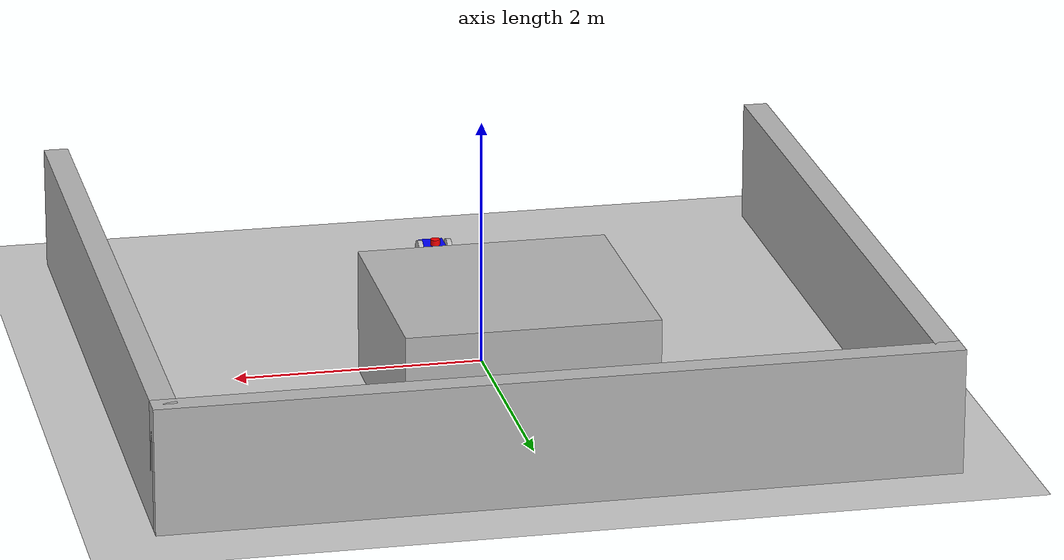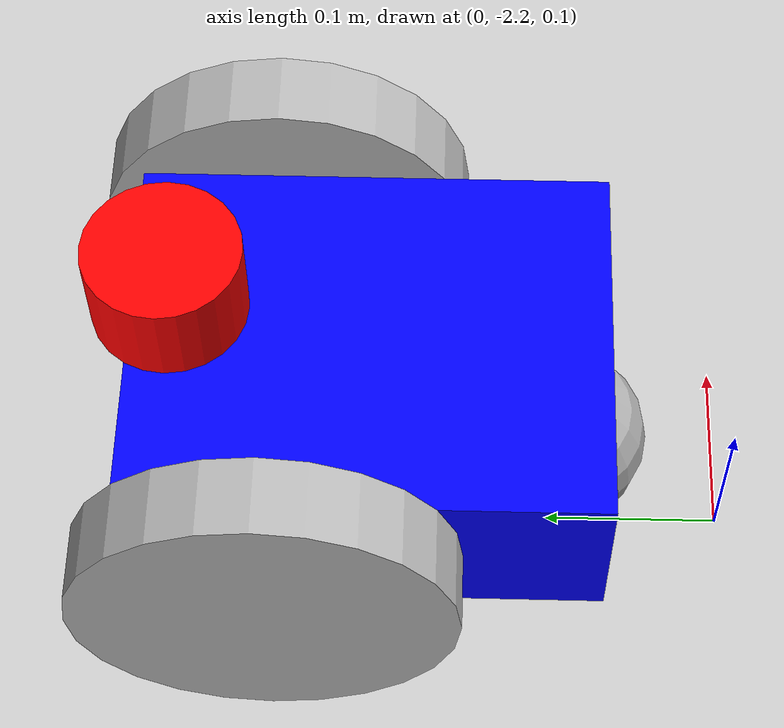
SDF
<?xml version="1.0" ?>
<sdf version="1.8">
  <world name="maze_world">
    <plugin filename="gz-sim-physics-system" name="gz::sim::systems::Physics"/>
    <plugin filename="gz-sim-scene-broadcaster-system" name="gz::sim::systems::SceneBroadcaster"/>
    <plugin filename="gz-sim-sensors-system" name="gz::sim::systems::Sensors">
      <render_engine>ogre</render_engine>
    </plugin>

    <light type="directional" name="sun">
      <cast_shadows>true</cast_shadows>
      <pose>0 0 10 0 0 0</pose>
      <diffuse>0.8 0.8 0.8 1</diffuse>
      <specular>0.2 0.2 0.2 1</specular>
      <direction>-0.5 0.1 -0.9</direction>
    </light>

    <model name="ground_plane">
      <static>true</static>
      <link name="link">
        <collision name="collision">
          <geometry><plane><normal>0 0 1</normal><size>100 100</size></plane></geometry>
        </collision>
        <visual name="visual">
          <geometry><plane><normal>0 0 1</normal><size>100 100</size></plane></geometry>
          <material><ambient>0.8 0.8 0.8 1</ambient></material>
        </visual>
      </link>
    </model>

    <model name="maze_walls">
      <static>true</static>
      <link name="wall1"><pose>3 0 0.5 0 0 0</pose><collision name="c"><geometry><box><size>0.2 6 1</size></box></geometry></collision><visual name="v"><geometry><box><size>0.2 6 1</size></box></geometry></visual></link>
      <link name="wall2"><pose>-3 0 0.5 0 0 0</pose><collision name="c"><geometry><box><size>0.2 6 1</size></box></geometry></collision><visual name="v"><geometry><box><size>0.2 6 1</size></box></geometry></visual></link>
      <link name="wall3"><pose>0 3 0.5 0 0 0</pose><collision name="c"><geometry><box><size>6.2 0.2 1</size></box></geometry></collision><visual name="v"><geometry><box><size>6.2 0.2 1</size></box></geometry></visual></link>
      <link name="obstacle"><pose>0 1 0.5 0 0 0</pose><collision name="c"><geometry><box><size>2 2 1</size></box></geometry></collision><visual name="v"><geometry><box><size>2 2 1</size></box></geometry></visual></link>
    </model>

    <model name="diff_robot">
      <pose>0 -2 0.15 0 0 1.5707</pose>

      <link name="chassis">
        <pose>0 0 0.1 0 0 0</pose>
        <inertial>
          <mass>1.0</mass>
          <inertia>
            <ixx>0.01</ixx><ixy>0</ixy><ixz>0</ixz>
            <iyy>0.01</iyy><iyz>0</iyz><izz>0.01</izz>
          </inertia>
        </inertial>
        <collision name="collision"><geometry><box><size>0.25 0.2 0.1</size></box></geometry></collision>
        <visual name="visual"><geometry><box><size>0.25 0.2 0.1</size></box></geometry><material><ambient>0 0 1 1</ambient></material></visual>
      </link>

      <link name="left_wheel">
        <pose>0.05 0.12 0.1 -1.5707 0 0</pose>
        <collision name="collision">
          <geometry><cylinder><radius>0.1</radius><length>0.04</length></cylinder></geometry>
          <surface><friction><ode><mu>10.0</mu><mu2>10.0</mu2></ode></friction></surface>
        </collision>
        <visual name="visual"><geometry><cylinder><radius>0.1</radius><length>0.04</length></cylinder></geometry></visual>
      </link>

      <link name="right_wheel">
        <pose>0.05 -0.12 0.1 -1.5707 0 0</pose>
        <collision name="collision">
          <geometry><cylinder><radius>0.1</radius><length>0.04</length></cylinder></geometry>
          <surface><friction><ode><mu>10.0</mu><mu2>10.0</mu2></ode></friction></surface>
        </collision>
        <visual name="visual"><geometry><cylinder><radius>0.1</radius><length>0.04</length></cylinder></geometry></visual>
      </link>

      <link name="caster">
        <pose>-0.1 0 0.05 0 0 0</pose>
        <collision name="collision">
          <geometry><sphere><radius>0.05</radius></sphere></geometry>
          <surface><friction><ode><mu>0.0</mu><mu2>0.0</mu2></ode></friction></surface>
        </collision>
        <visual name="visual"><geometry><sphere><radius>0.05</radius></sphere></geometry></visual>
      </link>

      <link name="lidar_link">
        <pose>0.1 0 0.2 0 0 0</pose>
        <sensor name="lidar_sensor" type="lidar">
          <topic>/scan</topic>
          <update_rate>10</update_rate>
          <ray>
            <scan><horizontal><samples>360</samples><resolution>1</resolution><min_angle>-3.14159</min_angle><max_angle>3.14159</max_angle></horizontal></scan>
            <range><min>0.12</min><max>10.0</max></range>
          </ray>
          <always_on>1</always_on>
          <visualize>true</visualize>
        </sensor>
        <visual name="visual"><geometry><cylinder><radius>0.04</radius><length>0.05</length></cylinder></geometry><material><ambient>1 0 0 1</ambient></material></visual>
      </link>

      <joint name="left_wheel_joint" type="revolute"><parent>chassis</parent><child>left_wheel</child><axis><xyz>0 0 1</xyz></axis></joint>
      <joint name="right_wheel_joint" type="revolute"><parent>chassis</parent><child>right_wheel</child><axis><xyz>0 0 1</xyz></axis></joint>
      <joint name="caster_joint" type="ball"><parent>chassis</parent><child>caster</child></joint>
      <joint name="lidar_joint" type="fixed"><parent>chassis</parent><child>lidar_link</child></joint>

      <plugin filename="gz-sim-diff-drive-system" name="gz::sim::systems::DiffDrive">
        <left_joint>left_wheel_joint</left_joint>
        <right_joint>right_wheel_joint</right_joint>
        <wheel_separation>0.24</wheel_separation>
        <wheel_radius>0.1</wheel_radius>
        <topic>/cmd_vel</topic>
        <odom_topic>/odom</odom_topic>
        <frame_id>odom</frame_id>
        <child_frame_id>chassis</child_frame_id>
        <publish_odom_tf>true</publish_odom_tf>
      </plugin>

      <plugin filename="gz-sim-pose-publisher-system" name="gz::sim::systems::PosePublisher">
        <publish_link_pose>true</publish_link_pose>
        <publish_sensor_pose>true</publish_sensor_pose>
        <publish_collision_pose>false</publish_collision_pose>
        <publish_visual_pose>false</publish_visual_pose>
        <publish_nested_model_pose>true</publish_nested_model_pose>
        <use_pose_vector_msg>true</use_pose_vector_msg>
        <static_publisher>true</static_publisher>
        <static_update_frequency>10</static_update_frequency>
      </plugin>
    </model>
  </world>
</sdf>
